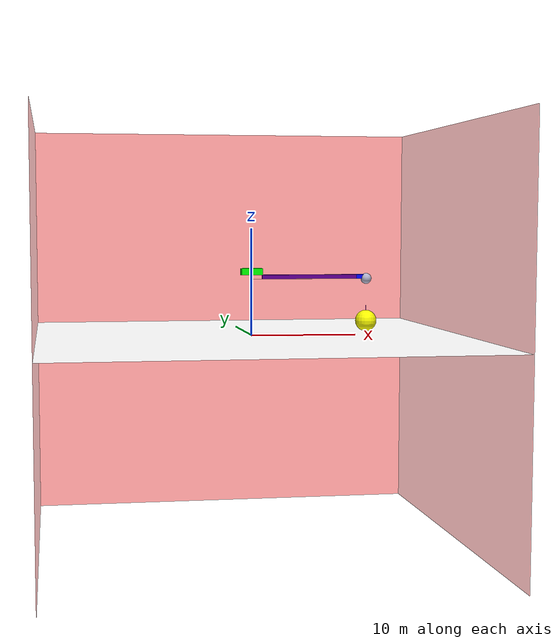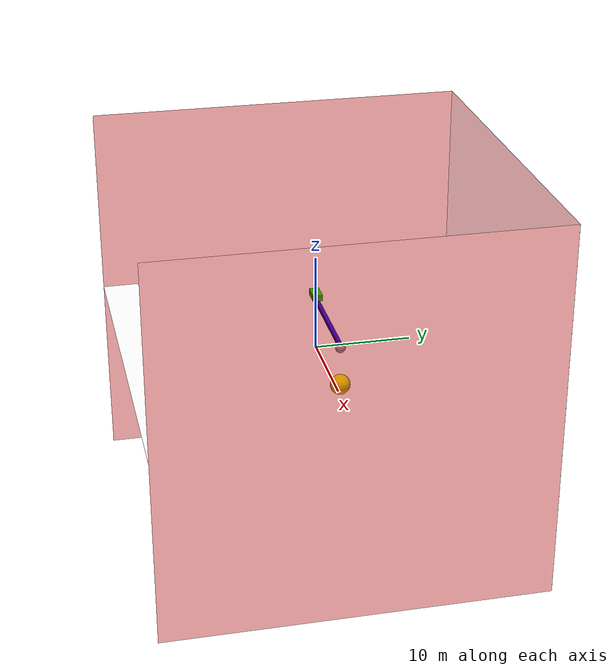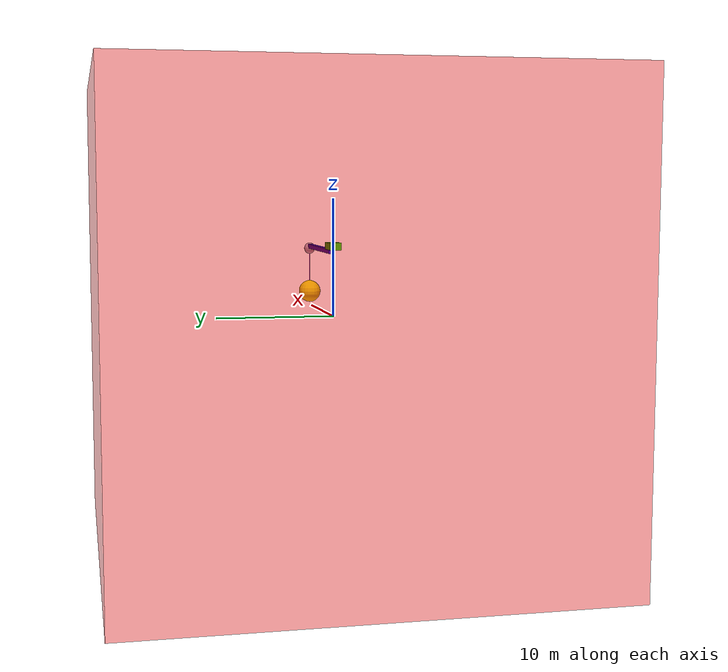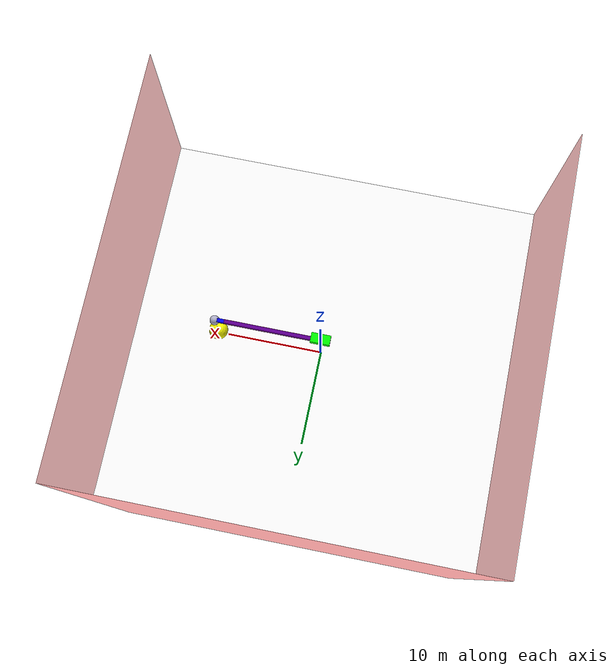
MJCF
<mujoco>
	<option timestep="0.001" integrator="RK4" gravity="0 0 -9.81" >
		<flag sensornoise="enable" energy="enable" contact="disable"  clampctrl="enable" />
	</option>

	<default>
    	<default class="translation">
    		<general gainprm="100" biasprm="0 -100 -100" biastype="affine" />
    	</default>
    	<default class="rotation">
      		<general gainprm=".5" biasprm="0 -.5 -.05" biastype="affine" />
      	</default>
      	<joint damping="1e-4"/>
      	<site type="box" size=".012 .012 .012" rgba=".7 .7 .8 1"/>
    </default>

	<asset>
		<material name="blue" rgba="0 0 1 1"/>
		<material name="red" rgba="1 0 0 .4"/>
		<material name="green" rgba="0 1 0 1"/>
		<material name="white" rgba="1 1 1 1"/>
		<material name="purple" rgba="1 .1 1 1"/>
		<material name="yellow" rgba="1 1 0 1"/>
		<material name="gray" rgba=".5 .5 .5 1"/>
	</asset>

	<worldbody>
			<light diffuse=".5 .5 .5" pos="0 0 100" dir="0 0 -1"/>
		<geom type="plane" size="20 20 0.1" material="white" />
		<body name="leftwall" pos="-20 0 0" euler="0 90 0">
			<geom name="leftwall" type="plane" size="20 20 .1" material="red" />
		</body>
		<body name="rightwall" pos="20 0 0" euler="0 -90 0">
			<geom name="rightwall" type="plane" size="20 20 .1" material="red" />
		</body>
		<body name="backwall" pos="0 20 0" euler="90 0 0">
			<geom name="backwall" type="plane" size="20 20 .1" material="red" />
		</body>
		<body name="trolley" pos="0 0 6" euler="0 0 0">
			<joint name="slider" type="slide"  pos="0 0 0" axis="1 0 0" limited="true" range="-14 14" />
			<geom name="trolley" type="box" size="1 .5 .3"  material="green" mass="100" />
			<body name="arm" pos="5 0 -0.5" euler="0 0 0">
				<geom name="arm" type="box" size="5 .2 .2" material="red" mass="100"/>
				<joint name="backlash" type="hinge" pos="-5 0 0" axis="0 0 1" armature="0.01" />
				<joint name="rotator" type="hinge" pos="-5 0 0" axis="0 0 1" limited="true" range="-3.14 3.14"/>
				<body name="boom" pos="1 0 0" euler="0 0 0" >
					<geom name="boom" type="box" size="5 .19 .19" material="blue" mass="100" />
					<joint name="extender" type="slide" pos="0 0 0" axis="1 0 0" limited="true" range="0 10" />
					<!--joint name="extender2" type="slide" pos="-2 0 0" axis="1 0 0" limited="true" range="0 5" /-->
					<body name="cable" pos="5 0 -2.2" euler="0 0 0">
						<geom name="cable" type="capsule" size=".01 2" material="purple"/>
						<site name="boom_tip" type="sphere" size=".5" material="white" pos="0 0 2" euler="0 0 0"/>
						<joint name="pendulum" type="ball" pos="0 0 2" />
						<body name="payload" pos="0 0 -2" euler="0 0 0">
							<geom name="payload" type="sphere" size="1" material="yellow" mass="5"/>
						</body>
					</body>
				</body>
			</body>
		</body>
	</worldbody>
	<actuator>
		<!--position name="trolley_position_servo" joint="slider" kp="0"  /-->
		<!--velocity name="trolley_velocity_servo" joint="slider" kv="1000"/-->
		<cylinder name="trolley_velocity_servo" joint="slider" ctrllimited="true" forcelimited="false" ctrlrange="0 10" lengthrange="0 1" gear="100 0 0 0 0 0"  />
		<!--position name="arm_position_servo" joint="rotator" kp="0"/-->
		<velocity name="arm_velocity_servo" joint="rotator" kv="100"/>
		<!--position name="boom_position_servo" joint="extender" kp="0"/-->
		<cylinder name="boom_velocity_servo" joint="extender" ctrllimited="true" forcelimited="false" ctrlrange="0 10" lengthrange="0 1" gear=".1 0 0 0 0 0"  />
		<!--position name="pend_position_servo" joint="pendulum" kp="0"/-->
		<velocity name="pend_velocity_servo" joint="pendulum" kv="1"/>
		<general name="x"  site="boom_tip"  gear="1 0 0 0 0 0" class="translation"/>
    	<general name="y"  site="boom_tip"  gear="0 1 0 0 0 0" class="translation"/>
    	<general name="z"  site="boom_tip"  gear="0 0 1 0 0 0" class="translation"/>

	</actuator>

	<sensor>
		<accelerometer name="b_t_accel" site="boom_tip"/>
		<velocimeter name="b_t_vel" site="boom_tip"/>
	</sensor>
</mujoco>
